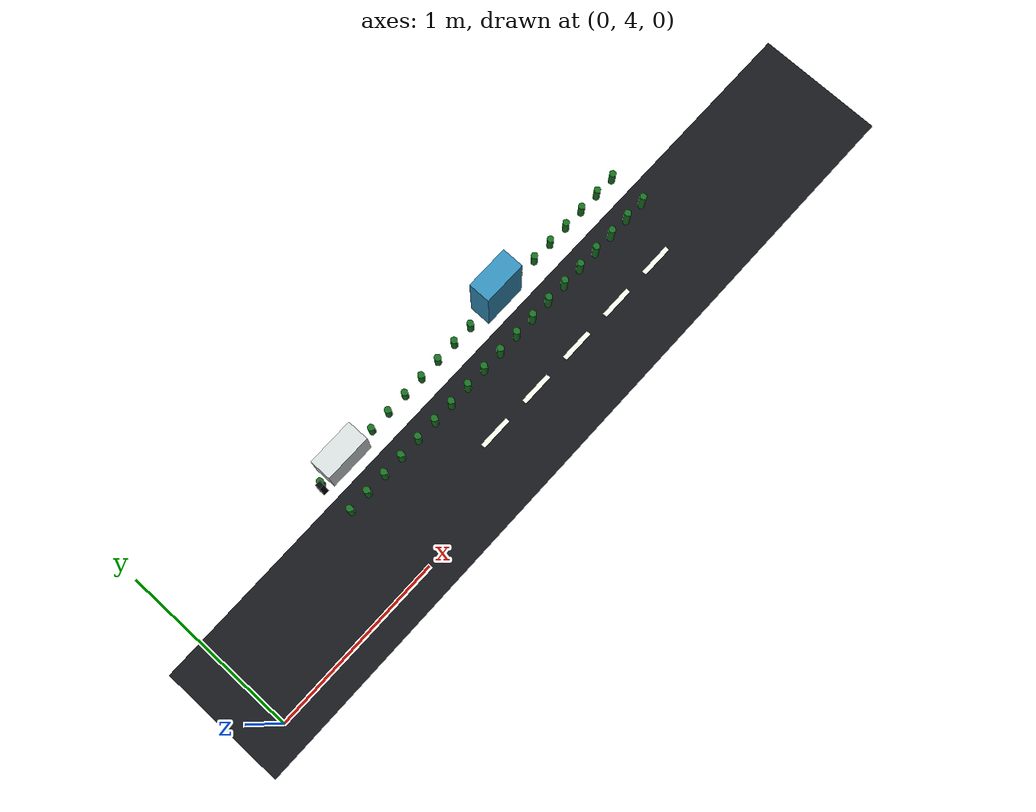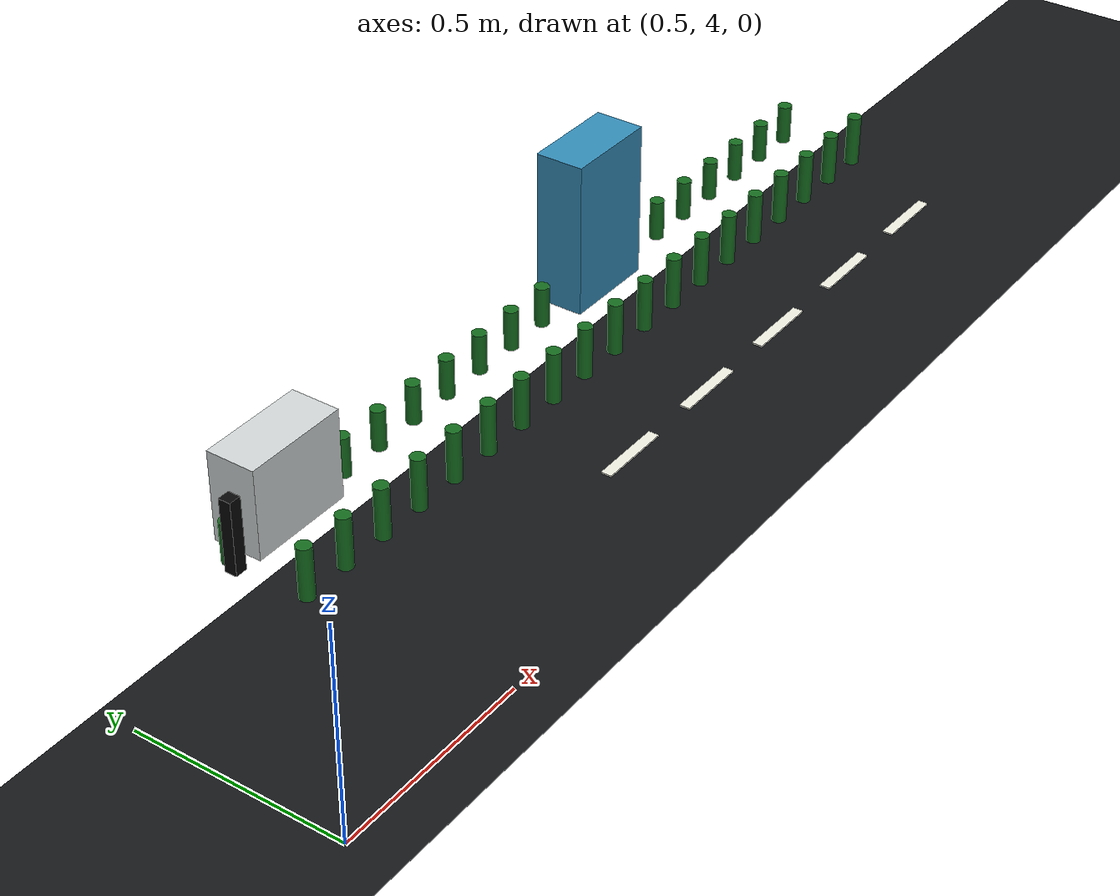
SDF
<sdf version="1.7">
 <world name="sandbox">
  <model name="RD-RING-N">
   <static>true</static>
   <pose>2.0 4.2 0.051000000000000004 0 0 0</pose>
   <link name="link">
    <collision name="collision">
     <geometry><box><size>4.4 0.7000000000000001 0.002</size></box></geometry>
    </collision>
    <visual name="visual">
     <geometry><box><size>4.4 0.7000000000000001 0.002</size></box></geometry>
     <material><ambient>0.08 0.09 0.1 1</ambient><diffuse>0.08 0.09 0.1 1</diffuse></material>
    </visual>
   </link>
  </model>
  <model name="LM-RING-N-04">
   <static>true</static>
   <pose>1.69 4.2 0.05450000000000001 0 0 0</pose>
   <link name="link">
    <collision name="collision"><geometry><box><size>0.18 0.025 0.004</size></box></geometry></collision>
    <visual name="visual">
     <geometry><box><size>0.18 0.025 0.004</size></box></geometry>
     <material><ambient>0.93 0.93 0.88 1</ambient><diffuse>0.93 0.93 0.88 1</diffuse></material>
    </visual>
   </link>
  </model>
  <model name="LM-RING-N-05">
   <static>true</static>
   <pose>1.9900000000000002 4.2 0.05450000000000001 0 0 0</pose>
   <link name="link">
    <collision name="collision"><geometry><box><size>0.18 0.025 0.004</size></box></geometry></collision>
    <visual name="visual">
     <geometry><box><size>0.18 0.025 0.004</size></box></geometry>
     <material><ambient>0.93 0.93 0.88 1</ambient><diffuse>0.93 0.93 0.88 1</diffuse></material>
    </visual>
   </link>
  </model>
  <model name="LM-RING-N-06">
   <static>true</static>
   <pose>2.29 4.2 0.05450000000000001 0 0 0</pose>
   <link name="link">
    <collision name="collision"><geometry><box><size>0.18 0.025 0.004</size></box></geometry></collision>
    <visual name="visual">
     <geometry><box><size>0.18 0.025 0.004</size></box></geometry>
     <material><ambient>0.93 0.93 0.88 1</ambient><diffuse>0.93 0.93 0.88 1</diffuse></material>
    </visual>
   </link>
  </model>
  <model name="LM-RING-N-07">
   <static>true</static>
   <pose>2.59 4.2 0.05450000000000001 0 0 0</pose>
   <link name="link">
    <collision name="collision"><geometry><box><size>0.18 0.025 0.004</size></box></geometry></collision>
    <visual name="visual">
     <geometry><box><size>0.18 0.025 0.004</size></box></geometry>
     <material><ambient>0.93 0.93 0.88 1</ambient><diffuse>0.93 0.93 0.88 1</diffuse></material>
    </visual>
   </link>
  </model>
  <model name="LM-RING-N-08">
   <static>true</static>
   <pose>2.89 4.2 0.05450000000000001 0 0 0</pose>
   <link name="link">
    <collision name="collision"><geometry><box><size>0.18 0.025 0.004</size></box></geometry></collision>
    <visual name="visual">
     <geometry><box><size>0.18 0.025 0.004</size></box></geometry>
     <material><ambient>0.93 0.93 0.88 1</ambient><diffuse>0.93 0.93 0.88 1</diffuse></material>
    </visual>
   </link>
  </model>
  <model name="BLD-F02">
   <static>true</static>
   <pose>1.1 4.66 0.16 0 0 0</pose>
   <link name="link">
    <collision name="collision"><geometry><box><size>0.26 0.12 0.22</size></box></geometry></collision>
    <visual name="visual">
     <geometry><box><size>0.26 0.12 0.22</size></box></geometry>
     <material><ambient>0.82 0.84 0.84 1</ambient><diffuse>0.82 0.84 0.84 1</diffuse></material>
    </visual>
   </link>
  </model>
  <model name="BLD-F03">
   <static>true</static>
   <pose>2.2 4.66 0.24 0 0 0</pose>
   <link name="link">
    <collision name="collision"><geometry><box><size>0.24 0.12 0.38</size></box></geometry></collision>
    <visual name="visual">
     <geometry><box><size>0.24 0.12 0.38</size></box></geometry>
     <material><ambient>0.2 0.55 0.72 1</ambient><diffuse>0.2 0.55 0.72 1</diffuse></material>
    </visual>
   </link>
  </model>
  <model name="TR-B01-03">
   <static>true</static>
   <pose>0.9363636363636365 4.65 0.1 0 0 0</pose>
   <link name="link">
    <collision name="collision">
     <geometry><cylinder><radius>0.0175</radius><length>0.1</length></cylinder></geometry>
    </collision>
    <visual name="visual">
     <geometry><cylinder><radius>0.0175</radius><length>0.1</length></cylinder></geometry>
     <material><ambient>0.08 0.42 0.12 1</ambient><diffuse>0.08 0.42 0.12 1</diffuse></material>
    </visual>
   </link>
  </model>
  <model name="TR-B01-04">
   <static>true</static>
   <pose>1.0545454545454547 4.65 0.1 0 0 0</pose>
   <link name="link">
    <collision name="collision">
     <geometry><cylinder><radius>0.0175</radius><length>0.1</length></cylinder></geometry>
    </collision>
    <visual name="visual">
     <geometry><cylinder><radius>0.0175</radius><length>0.1</length></cylinder></geometry>
     <material><ambient>0.08 0.42 0.12 1</ambient><diffuse>0.08 0.42 0.12 1</diffuse></material>
    </visual>
   </link>
  </model>
  <model name="TR-B01-05">
   <static>true</static>
   <pose>1.1727272727272728 4.65 0.1 0 0 0</pose>
   <link name="link">
    <collision name="collision">
     <geometry><cylinder><radius>0.0175</radius><length>0.1</length></cylinder></geometry>
    </collision>
    <visual name="visual">
     <geometry><cylinder><radius>0.0175</radius><length>0.1</length></cylinder></geometry>
     <material><ambient>0.08 0.42 0.12 1</ambient><diffuse>0.08 0.42 0.12 1</diffuse></material>
    </visual>
   </link>
  </model>
  <model name="TR-B01-06">
   <static>true</static>
   <pose>1.290909090909091 4.65 0.1 0 0 0</pose>
   <link name="link">
    <collision name="collision">
     <geometry><cylinder><radius>0.0175</radius><length>0.1</length></cylinder></geometry>
    </collision>
    <visual name="visual">
     <geometry><cylinder><radius>0.0175</radius><length>0.1</length></cylinder></geometry>
     <material><ambient>0.08 0.42 0.12 1</ambient><diffuse>0.08 0.42 0.12 1</diffuse></material>
    </visual>
   </link>
  </model>
  <model name="TR-B01-07">
   <static>true</static>
   <pose>1.4090909090909092 4.65 0.1 0 0 0</pose>
   <link name="link">
    <collision name="collision">
     <geometry><cylinder><radius>0.0175</radius><length>0.1</length></cylinder></geometry>
    </collision>
    <visual name="visual">
     <geometry><cylinder><radius>0.0175</radius><length>0.1</length></cylinder></geometry>
     <material><ambient>0.08 0.42 0.12 1</ambient><diffuse>0.08 0.42 0.12 1</diffuse></material>
    </visual>
   </link>
  </model>
  <model name="TR-B01-08">
   <static>true</static>
   <pose>1.5272727272727273 4.65 0.1 0 0 0</pose>
   <link name="link">
    <collision name="collision">
     <geometry><cylinder><radius>0.0175</radius><length>0.1</length></cylinder></geometry>
    </collision>
    <visual name="visual">
     <geometry><cylinder><radius>0.0175</radius><length>0.1</length></cylinder></geometry>
     <material><ambient>0.08 0.42 0.12 1</ambient><diffuse>0.08 0.42 0.12 1</diffuse></material>
    </visual>
   </link>
  </model>
  <model name="TR-B01-09">
   <static>true</static>
   <pose>1.6454545454545455 4.65 0.1 0 0 0</pose>
   <link name="link">
    <collision name="collision">
     <geometry><cylinder><radius>0.0175</radius><length>0.1</length></cylinder></geometry>
    </collision>
    <visual name="visual">
     <geometry><cylinder><radius>0.0175</radius><length>0.1</length></cylinder></geometry>
     <material><ambient>0.08 0.42 0.12 1</ambient><diffuse>0.08 0.42 0.12 1</diffuse></material>
    </visual>
   </link>
  </model>
  <model name="TR-B01-10">
   <static>true</static>
   <pose>1.7636363636363637 4.65 0.1 0 0 0</pose>
   <link name="link">
    <collision name="collision">
     <geometry><cylinder><radius>0.0175</radius><length>0.1</length></cylinder></geometry>
    </collision>
    <visual name="visual">
     <geometry><cylinder><radius>0.0175</radius><length>0.1</length></cylinder></geometry>
     <material><ambient>0.08 0.42 0.12 1</ambient><diffuse>0.08 0.42 0.12 1</diffuse></material>
    </visual>
   </link>
  </model>
  <model name="TR-B01-11">
   <static>true</static>
   <pose>1.8818181818181818 4.65 0.1 0 0 0</pose>
   <link name="link">
    <collision name="collision">
     <geometry><cylinder><radius>0.0175</radius><length>0.1</length></cylinder></geometry>
    </collision>
    <visual name="visual">
     <geometry><cylinder><radius>0.0175</radius><length>0.1</length></cylinder></geometry>
     <material><ambient>0.08 0.42 0.12 1</ambient><diffuse>0.08 0.42 0.12 1</diffuse></material>
    </visual>
   </link>
  </model>
  <model name="TR-B01-12">
   <static>true</static>
   <pose>2.0 4.65 0.1 0 0 0</pose>
   <link name="link">
    <collision name="collision">
     <geometry><cylinder><radius>0.0175</radius><length>0.1</length></cylinder></geometry>
    </collision>
    <visual name="visual">
     <geometry><cylinder><radius>0.0175</radius><length>0.1</length></cylinder></geometry>
     <material><ambient>0.08 0.42 0.12 1</ambient><diffuse>0.08 0.42 0.12 1</diffuse></material>
    </visual>
   </link>
  </model>
  <model name="TR-B01-13">
   <static>true</static>
   <pose>2.118181818181818 4.65 0.1 0 0 0</pose>
   <link name="link">
    <collision name="collision">
     <geometry><cylinder><radius>0.0175</radius><length>0.1</length></cylinder></geometry>
    </collision>
    <visual name="visual">
     <geometry><cylinder><radius>0.0175</radius><length>0.1</length></cylinder></geometry>
     <material><ambient>0.08 0.42 0.12 1</ambient><diffuse>0.08 0.42 0.12 1</diffuse></material>
    </visual>
   </link>
  </model>
  <model name="TR-B01-14">
   <static>true</static>
   <pose>2.2363636363636368 4.65 0.1 0 0 0</pose>
   <link name="link">
    <collision name="collision">
     <geometry><cylinder><radius>0.0175</radius><length>0.1</length></cylinder></geometry>
    </collision>
    <visual name="visual">
     <geometry><cylinder><radius>0.0175</radius><length>0.1</length></cylinder></geometry>
     <material><ambient>0.08 0.42 0.12 1</ambient><diffuse>0.08 0.42 0.12 1</diffuse></material>
    </visual>
   </link>
  </model>
  <model name="TR-B01-15">
   <static>true</static>
   <pose>2.3545454545454545 4.65 0.1 0 0 0</pose>
   <link name="link">
    <collision name="collision">
     <geometry><cylinder><radius>0.0175</radius><length>0.1</length></cylinder></geometry>
    </collision>
    <visual name="visual">
     <geometry><cylinder><radius>0.0175</radius><length>0.1</length></cylinder></geometry>
     <material><ambient>0.08 0.42 0.12 1</ambient><diffuse>0.08 0.42 0.12 1</diffuse></material>
    </visual>
   </link>
  </model>
  <model name="TR-B01-16">
   <static>true</static>
   <pose>2.4727272727272727 4.65 0.1 0 0 0</pose>
   <link name="link">
    <collision name="collision">
     <geometry><cylinder><radius>0.0175</radius><length>0.1</length></cylinder></geometry>
    </collision>
    <visual name="visual">
     <geometry><cylinder><radius>0.0175</radius><length>0.1</length></cylinder></geometry>
     <material><ambient>0.08 0.42 0.12 1</ambient><diffuse>0.08 0.42 0.12 1</diffuse></material>
    </visual>
   </link>
  </model>
  <model name="TR-B01-17">
   <static>true</static>
   <pose>2.5909090909090913 4.65 0.1 0 0 0</pose>
   <link name="link">
    <collision name="collision">
     <geometry><cylinder><radius>0.0175</radius><length>0.1</length></cylinder></geometry>
    </collision>
    <visual name="visual">
     <geometry><cylinder><radius>0.0175</radius><length>0.1</length></cylinder></geometry>
     <material><ambient>0.08 0.42 0.12 1</ambient><diffuse>0.08 0.42 0.12 1</diffuse></material>
    </visual>
   </link>
  </model>
  <model name="TR-B01-18">
   <static>true</static>
   <pose>2.7090909090909094 4.65 0.1 0 0 0</pose>
   <link name="link">
    <collision name="collision">
     <geometry><cylinder><radius>0.0175</radius><length>0.1</length></cylinder></geometry>
    </collision>
    <visual name="visual">
     <geometry><cylinder><radius>0.0175</radius><length>0.1</length></cylinder></geometry>
     <material><ambient>0.08 0.42 0.12 1</ambient><diffuse>0.08 0.42 0.12 1</diffuse></material>
    </visual>
   </link>
  </model>
  <model name="TR-B01-19">
   <static>true</static>
   <pose>2.8272727272727276 4.65 0.1 0 0 0</pose>
   <link name="link">
    <collision name="collision">
     <geometry><cylinder><radius>0.0175</radius><length>0.1</length></cylinder></geometry>
    </collision>
    <visual name="visual">
     <geometry><cylinder><radius>0.0175</radius><length>0.1</length></cylinder></geometry>
     <material><ambient>0.08 0.42 0.12 1</ambient><diffuse>0.08 0.42 0.12 1</diffuse></material>
    </visual>
   </link>
  </model>
  <model name="TR-B01-20">
   <static>true</static>
   <pose>2.9454545454545458 4.65 0.1 0 0 0</pose>
   <link name="link">
    <collision name="collision">
     <geometry><cylinder><radius>0.0175</radius><length>0.1</length></cylinder></geometry>
    </collision>
    <visual name="visual">
     <geometry><cylinder><radius>0.0175</radius><length>0.1</length></cylinder></geometry>
     <material><ambient>0.08 0.42 0.12 1</ambient><diffuse>0.08 0.42 0.12 1</diffuse></material>
    </visual>
   </link>
  </model>
  <model name="TR-B01-21">
   <static>true</static>
   <pose>3.063636363636364 4.65 0.1 0 0 0</pose>
   <link name="link">
    <collision name="collision">
     <geometry><cylinder><radius>0.0175</radius><length>0.1</length></cylinder></geometry>
    </collision>
    <visual name="visual">
     <geometry><cylinder><radius>0.0175</radius><length>0.1</length></cylinder></geometry>
     <material><ambient>0.08 0.42 0.12 1</ambient><diffuse>0.08 0.42 0.12 1</diffuse></material>
    </visual>
   </link>
  </model>
  <model name="TR-B02-03">
   <static>true</static>
   <pose>0.9363636363636365 4.45 0.115 0 0 0</pose>
   <link name="link">
    <collision name="collision">
     <geometry><cylinder><radius>0.0175</radius><length>0.13</length></cylinder></geometry>
    </collision>
    <visual name="visual">
     <geometry><cylinder><radius>0.0175</radius><length>0.13</length></cylinder></geometry>
     <material><ambient>0.08 0.42 0.12 1</ambient><diffuse>0.08 0.42 0.12 1</diffuse></material>
    </visual>
   </link>
  </model>
  <model name="TR-B02-04">
   <static>true</static>
   <pose>1.0545454545454547 4.45 0.115 0 0 0</pose>
   <link name="link">
    <collision name="collision">
     <geometry><cylinder><radius>0.0175</radius><length>0.13</length></cylinder></geometry>
    </collision>
    <visual name="visual">
     <geometry><cylinder><radius>0.0175</radius><length>0.13</length></cylinder></geometry>
     <material><ambient>0.08 0.42 0.12 1</ambient><diffuse>0.08 0.42 0.12 1</diffuse></material>
    </visual>
   </link>
  </model>
  <model name="TR-B02-05">
   <static>true</static>
   <pose>1.1727272727272728 4.45 0.115 0 0 0</pose>
   <link name="link">
    <collision name="collision">
     <geometry><cylinder><radius>0.0175</radius><length>0.13</length></cylinder></geometry>
    </collision>
    <visual name="visual">
     <geometry><cylinder><radius>0.0175</radius><length>0.13</length></cylinder></geometry>
     <material><ambient>0.08 0.42 0.12 1</ambient><diffuse>0.08 0.42 0.12 1</diffuse></material>
    </visual>
   </link>
  </model>
  <model name="TR-B02-06">
   <static>true</static>
   <pose>1.290909090909091 4.45 0.115 0 0 0</pose>
   <link name="link">
    <collision name="collision">
     <geometry><cylinder><radius>0.0175</radius><length>0.13</length></cylinder></geometry>
    </collision>
    <visual name="visual">
     <geometry><cylinder><radius>0.0175</radius><length>0.13</length></cylinder></geometry>
     <material><ambient>0.08 0.42 0.12 1</ambient><diffuse>0.08 0.42 0.12 1</diffuse></material>
    </visual>
   </link>
  </model>
  <model name="TR-B02-07">
   <static>true</static>
   <pose>1.4090909090909092 4.45 0.115 0 0 0</pose>
   <link name="link">
    <collision name="collision">
     <geometry><cylinder><radius>0.0175</radius><length>0.13</length></cylinder></geometry>
    </collision>
    <visual name="visual">
     <geometry><cylinder><radius>0.0175</radius><length>0.13</length></cylinder></geometry>
     <material><ambient>0.08 0.42 0.12 1</ambient><diffuse>0.08 0.42 0.12 1</diffuse></material>
    </visual>
   </link>
  </model>
  <model name="TR-B02-08">
   <static>true</static>
   <pose>1.5272727272727273 4.45 0.115 0 0 0</pose>
   <link name="link">
    <collision name="collision">
     <geometry><cylinder><radius>0.0175</radius><length>0.13</length></cylinder></geometry>
    </collision>
    <visual name="visual">
     <geometry><cylinder><radius>0.0175</radius><length>0.13</length></cylinder></geometry>
     <material><ambient>0.08 0.42 0.12 1</ambient><diffuse>0.08 0.42 0.12 1</diffuse></material>
    </visual>
   </link>
  </model>
  <model name="TR-B02-09">
   <static>true</static>
   <pose>1.6454545454545455 4.45 0.115 0 0 0</pose>
   <link name="link">
    <collision name="collision">
     <geometry><cylinder><radius>0.0175</radius><length>0.13</length></cylinder></geometry>
    </collision>
    <visual name="visual">
     <geometry><cylinder><radius>0.0175</radius><length>0.13</length></cylinder></geometry>
     <material><ambient>0.08 0.42 0.12 1</ambient><diffuse>0.08 0.42 0.12 1</diffuse></material>
    </visual>
   </link>
  </model>
  <model name="TR-B02-10">
   <static>true</static>
   <pose>1.7636363636363637 4.45 0.115 0 0 0</pose>
   <link name="link">
    <collision name="collision">
     <geometry><cylinder><radius>0.0175</radius><length>0.13</length></cylinder></geometry>
    </collision>
    <visual name="visual">
     <geometry><cylinder><radius>0.0175</radius><length>0.13</length></cylinder></geometry>
     <material><ambient>0.08 0.42 0.12 1</ambient><diffuse>0.08 0.42 0.12 1</diffuse></material>
    </visual>
   </link>
  </model>
  <model name="TR-B02-11">
   <static>true</static>
   <pose>1.8818181818181818 4.45 0.115 0 0 0</pose>
   <link name="link">
    <collision name="collision">
     <geometry><cylinder><radius>0.0175</radius><length>0.13</length></cylinder></geometry>
    </collision>
    <visual name="visual">
     <geometry><cylinder><radius>0.0175</radius><length>0.13</length></cylinder></geometry>
     <material><ambient>0.08 0.42 0.12 1</ambient><diffuse>0.08 0.42 0.12 1</diffuse></material>
    </visual>
   </link>
  </model>
  <model name="TR-B02-12">
   <static>true</static>
   <pose>2.0 4.45 0.115 0 0 0</pose>
   <link name="link">
    <collision name="collision">
     <geometry><cylinder><radius>0.0175</radius><length>0.13</length></cylinder></geometry>
    </collision>
    <visual name="visual">
     <geometry><cylinder><radius>0.0175</radius><length>0.13</length></cylinder></geometry>
     <material><ambient>0.08 0.42 0.12 1</ambient><diffuse>0.08 0.42 0.12 1</diffuse></material>
    </visual>
   </link>
  </model>
  <model name="TR-B02-13">
   <static>true</static>
   <pose>2.118181818181818 4.45 0.115 0 0 0</pose>
   <link name="link">
    <collision name="collision">
     <geometry><cylinder><radius>0.0175</radius><length>0.13</length></cylinder></geometry>
    </collision>
    <visual name="visual">
     <geometry><cylinder><radius>0.0175</radius><length>0.13</length></cylinder></geometry>
     <material><ambient>0.08 0.42 0.12 1</ambient><diffuse>0.08 0.42 0.12 1</diffuse></material>
    </visual>
   </link>
  </model>
  <model name="TR-B02-14">
   <static>true</static>
   <pose>2.2363636363636368 4.45 0.115 0 0 0</pose>
   <link name="link">
    <collision name="collision">
     <geometry><cylinder><radius>0.0175</radius><length>0.13</length></cylinder></geometry>
    </collision>
    <visual name="visual">
     <geometry><cylinder><radius>0.0175</radius><length>0.13</length></cylinder></geometry>
     <material><ambient>0.08 0.42 0.12 1</ambient><diffuse>0.08 0.42 0.12 1</diffuse></material>
    </visual>
   </link>
  </model>
  <model name="TR-B02-15">
   <static>true</static>
   <pose>2.3545454545454545 4.45 0.115 0 0 0</pose>
   <link name="link">
    <collision name="collision">
     <geometry><cylinder><radius>0.0175</radius><length>0.13</length></cylinder></geometry>
    </collision>
    <visual name="visual">
     <geometry><cylinder><radius>0.0175</radius><length>0.13</length></cylinder></geometry>
     <material><ambient>0.08 0.42 0.12 1</ambient><diffuse>0.08 0.42 0.12 1</diffuse></material>
    </visual>
   </link>
  </model>
  <model name="TR-B02-16">
   <static>true</static>
   <pose>2.4727272727272727 4.45 0.115 0 0 0</pose>
   <link name="link">
    <collision name="collision">
     <geometry><cylinder><radius>0.0175</radius><length>0.13</length></cylinder></geometry>
    </collision>
    <visual name="visual">
     <geometry><cylinder><radius>0.0175</radius><length>0.13</length></cylinder></geometry>
     <material><ambient>0.08 0.42 0.12 1</ambient><diffuse>0.08 0.42 0.12 1</diffuse></material>
    </visual>
   </link>
  </model>
  <model name="TR-B02-17">
   <static>true</static>
   <pose>2.5909090909090913 4.45 0.115 0 0 0</pose>
   <link name="link">
    <collision name="collision">
     <geometry><cylinder><radius>0.0175</radius><length>0.13</length></cylinder></geometry>
    </collision>
    <visual name="visual">
     <geometry><cylinder><radius>0.0175</radius><length>0.13</length></cylinder></geometry>
     <material><ambient>0.08 0.42 0.12 1</ambient><diffuse>0.08 0.42 0.12 1</diffuse></material>
    </visual>
   </link>
  </model>
  <model name="TR-B02-18">
   <static>true</static>
   <pose>2.7090909090909094 4.45 0.115 0 0 0</pose>
   <link name="link">
    <collision name="collision">
     <geometry><cylinder><radius>0.0175</radius><length>0.13</length></cylinder></geometry>
    </collision>
    <visual name="visual">
     <geometry><cylinder><radius>0.0175</radius><length>0.13</length></cylinder></geometry>
     <material><ambient>0.08 0.42 0.12 1</ambient><diffuse>0.08 0.42 0.12 1</diffuse></material>
    </visual>
   </link>
  </model>
  <model name="TR-B02-19">
   <static>true</static>
   <pose>2.8272727272727276 4.45 0.115 0 0 0</pose>
   <link name="link">
    <collision name="collision">
     <geometry><cylinder><radius>0.0175</radius><length>0.13</length></cylinder></geometry>
    </collision>
    <visual name="visual">
     <geometry><cylinder><radius>0.0175</radius><length>0.13</length></cylinder></geometry>
     <material><ambient>0.08 0.42 0.12 1</ambient><diffuse>0.08 0.42 0.12 1</diffuse></material>
    </visual>
   </link>
  </model>
  <model name="TR-B02-20">
   <static>true</static>
   <pose>2.9454545454545458 4.45 0.115 0 0 0</pose>
   <link name="link">
    <collision name="collision">
     <geometry><cylinder><radius>0.0175</radius><length>0.13</length></cylinder></geometry>
    </collision>
    <visual name="visual">
     <geometry><cylinder><radius>0.0175</radius><length>0.13</length></cylinder></geometry>
     <material><ambient>0.08 0.42 0.12 1</ambient><diffuse>0.08 0.42 0.12 1</diffuse></material>
    </visual>
   </link>
  </model>
  <model name="TR-B02-21">
   <static>true</static>
   <pose>3.063636363636364 4.45 0.115 0 0 0</pose>
   <link name="link">
    <collision name="collision">
     <geometry><cylinder><radius>0.0175</radius><length>0.13</length></cylinder></geometry>
    </collision>
    <visual name="visual">
     <geometry><cylinder><radius>0.0175</radius><length>0.13</length></cylinder></geometry>
     <material><ambient>0.08 0.42 0.12 1</ambient><diffuse>0.08 0.42 0.12 1</diffuse></material>
    </visual>
   </link>
  </model>
  <model name="TL-NW-4">
   <static>true</static>
   <pose>0.92 4.62 0.14 0 0 0</pose>
   <link name="link">
    <collision name="collision"><geometry><box><size>0.03 0.03 0.18</size></box></geometry></collision>
    <visual name="visual">
     <geometry><box><size>0.03 0.03 0.18</size></box></geometry>
     <material><ambient>0.03 0.03 0.03 1</ambient><diffuse>0.03 0.03 0.03 1</diffuse></material>
    </visual>
   </link>
  </model>
 </world>
</sdf>
